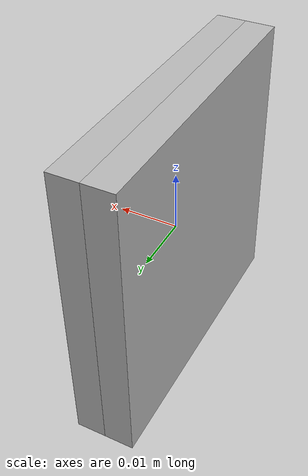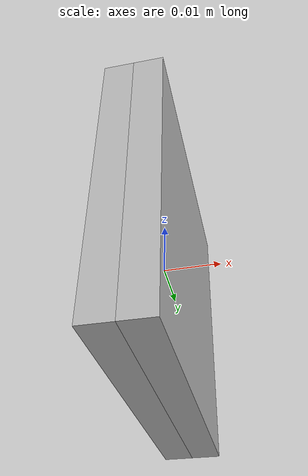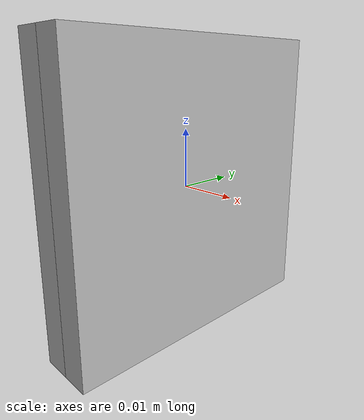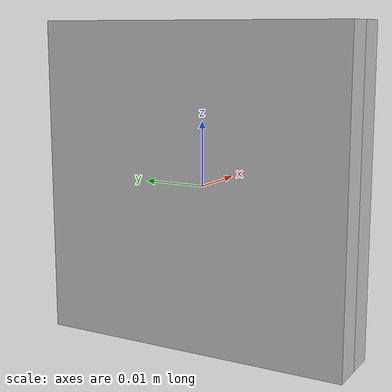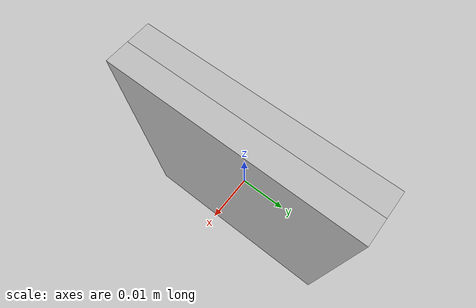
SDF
<?xml version="1.0"?>
 			<sdf version="1.6">
 			<model name="Aruco tag0">
 				<static>true</static>
 				<link name="robot_link">
           <visual name="front_visual">
             <pose>0.0025 0 0 0 0 0 </pose>
               <geometry>
                 <box>
                   <size>0.005 0.05 0.05 </size>
                 </box>
               </geometry>
               <material> <!-- Body material -->
                 <script>
                   <uri>model://tag_0/materials/scripts/tag.material</uri>
                   <name>aruco_tag_0</name>
                 </script>
               </material> <!-- End Body Material -->
           </visual>
           <visual name="rear_visual">
             <pose>-0.0025 0 0 0 0 0 </pose>
               <geometry>
                 <box>
                   <size>0.005 0.05 0.05 </size>
                 </box>
               </geometry>
           </visual>
 				</link>
 			</model>
 			</sdf>
